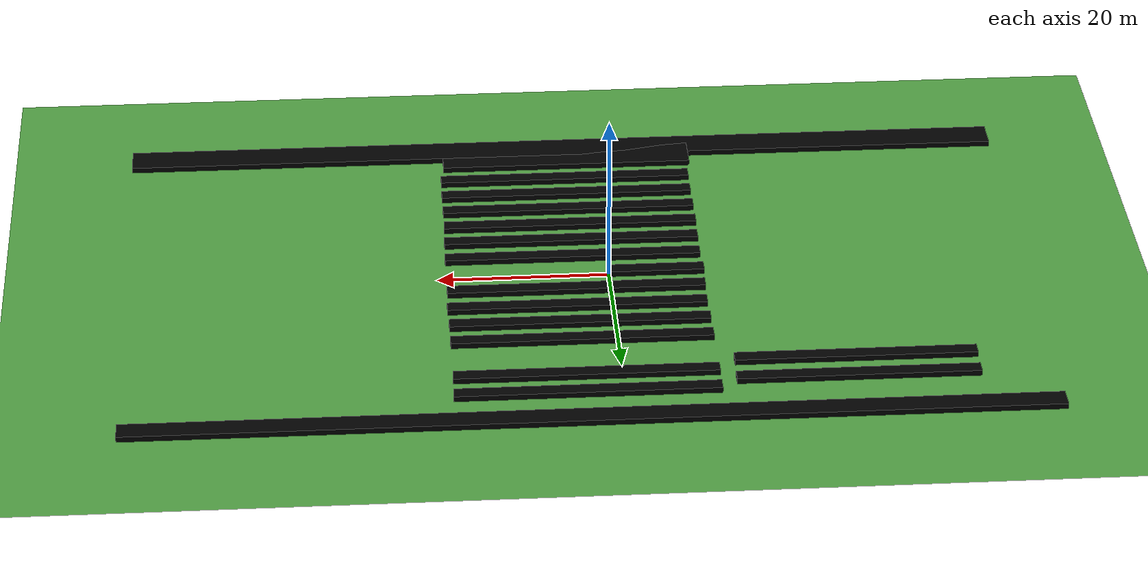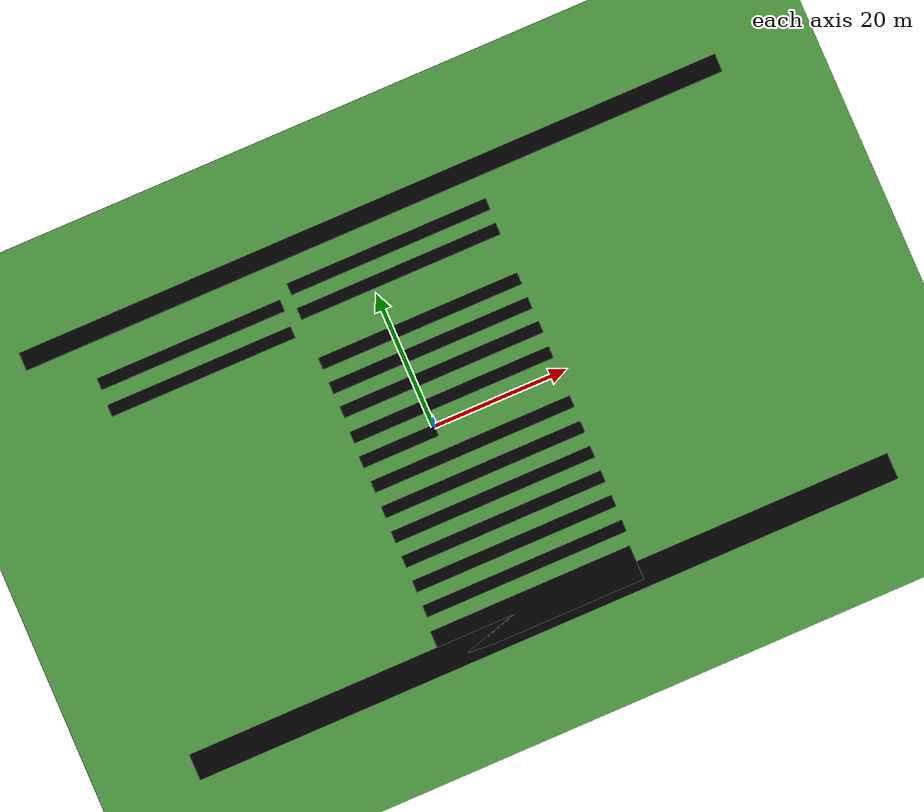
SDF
<sdf version="1.6">
 <world name="default">
  <model name="ground_plane">
   <static>1</static>
   <link name="link">
    <collision name="collision">
     <geometry><plane><normal>0 0 1</normal><size>120 120</size></plane></geometry>
     <surface><friction><ode><mu>100</mu><mu2>50</mu2></ode></friction></surface>
    </collision>
    <visual name="visual">
     <cast_shadows>0</cast_shadows>
     <geometry><plane><normal>0 0 1</normal><size>120 120</size></plane></geometry>
     <material>
      <script><uri>file://media/materials/scripts/gazebo.material</uri><name>Gazebo/Grass</name></script>
     </material>
    </visual>
   </link>
  </model>
  <model name="crop_01_8">
   <link name="crop_01_0::link_0">
    <inertial>
     <mass>10.9148</mass>
     <inertia><ixx>13.7036</ixx><ixy>0</ixy><ixz>0</ixz><iyy>702.087</iyy><iyz>0</iyz><izz>715.772</izz></inertia>
    </inertial>
    <visual name="visual">
     <geometry><box><size>30 1.68705 1</size></box></geometry>
     <material>
      <ambient>0 1 0 1</ambient>
      <diffuse>0 0 0 1</diffuse>
      <specular>0.1 0.1 0.1 1</specular>
      <emissive>0 0 0 0</emissive>
     </material>
    </visual>
    <collision name="collision">
     <geometry><box><size>30 1.68705 1</size></box></geometry>
     <surface>
      <friction>
       <ode><mu>1</mu><mu2>1</mu2><fdir1>0 0 0</fdir1><slip1>0</slip1><slip2>0</slip2></ode>
       <torsional>
        <coefficient>1</coefficient>
        <patch_radius>0</patch_radius>
        <surface_radius>0</surface_radius>
        <use_patch_radius>1</use_patch_radius>
        <ode><slip>0</slip></ode>
       </torsional>
      </friction>
      <bounce><restitution_coefficient>0</restitution_coefficient><threshold>1e+06</threshold></bounce>
      <contact>
       <collide_without_contact>0</collide_without_contact>
       <collide_without_contact_bitmask>1</collide_without_contact_bitmask>
       <collide_bitmask>1</collide_bitmask>
       <ode>
        <soft_cfm>0</soft_cfm>
        <soft_erp>0.2</soft_erp>
        <kp>1e+13</kp>
        <kd>1</kd>
        <max_vel>0.01</max_vel>
        <min_depth>0</min_depth>
       </ode>
       <bullet>
        <split_impulse>1</split_impulse>
        <split_impulse_penetration_threshold>-0.01</split_impulse_penetration_threshold>
        <soft_cfm>0</soft_cfm>
        <soft_erp>0.2</soft_erp>
        <kp>1e+13</kp>
        <kd>1</kd>
       </bullet>
      </contact>
     </surface>
    </collision>
   </link>
   <static>1</static>
   <pose>3.80294 -11.8661 0.050638 0 -0 0</pose>
  </model>
  <model name="crop_01_8_clone">
   <link name="crop_01_0::link_0">
    <inertial>
     <mass>10.9148</mass>
     <inertia><ixx>13.7036</ixx><ixy>0</ixy><ixz>0</ixz><iyy>702.087</iyy><iyz>0</iyz><izz>715.772</izz></inertia>
    </inertial>
    <visual name="visual">
     <geometry><box><size>30 1.68705 1</size></box></geometry>
     <material>
      <ambient>0 1 0 1</ambient>
      <diffuse>0 0 0 1</diffuse>
      <specular>0.1 0.1 0.1 1</specular>
      <emissive>0 0 0 0</emissive>
     </material>
    </visual>
    <collision name="collision">
     <geometry><box><size>30 1.68705 1</size></box></geometry>
     <surface>
      <friction>
       <ode><mu>1</mu><mu2>1</mu2><fdir1>0 0 0</fdir1><slip1>0</slip1><slip2>0</slip2></ode>
       <torsional>
        <coefficient>1</coefficient>
        <patch_radius>0</patch_radius>
        <surface_radius>0</surface_radius>
        <use_patch_radius>1</use_patch_radius>
        <ode><slip>0</slip></ode>
       </torsional>
      </friction>
      <bounce><restitution_coefficient>0</restitution_coefficient><threshold>1e+06</threshold></bounce>
      <contact>
       <collide_without_contact>0</collide_without_contact>
       <collide_without_contact_bitmask>1</collide_without_contact_bitmask>
       <collide_bitmask>1</collide_bitmask>
       <ode>
        <soft_cfm>0</soft_cfm>
        <soft_erp>0.2</soft_erp>
        <kp>1e+13</kp>
        <kd>1</kd>
        <max_vel>0.01</max_vel>
        <min_depth>0</min_depth>
       </ode>
       <bullet>
        <split_impulse>1</split_impulse>
        <split_impulse_penetration_threshold>-0.01</split_impulse_penetration_threshold>
        <soft_cfm>0</soft_cfm>
        <soft_erp>0.2</soft_erp>
        <kp>1e+13</kp>
        <kd>1</kd>
       </bullet>
      </contact>
     </surface>
    </collision>
   </link>
   <static>1</static>
   <pose>3.79308 -15.5752 0.050638 0 -0 0</pose>
  </model>
  <model name="crop_01_8_clone_0">
   <link name="crop_01_0::link_0">
    <inertial>
     <mass>10.9148</mass>
     <inertia><ixx>13.7036</ixx><ixy>0</ixy><ixz>0</ixz><iyy>702.087</iyy><iyz>0</iyz><izz>715.772</izz></inertia>
    </inertial>
    <visual name="visual">
     <geometry><box><size>30 1.68705 1</size></box></geometry>
     <material>
      <ambient>0 1 0 1</ambient>
      <diffuse>0 0 0 1</diffuse>
      <specular>0.1 0.1 0.1 1</specular>
      <emissive>0 0 0 0</emissive>
     </material>
    </visual>
    <collision name="collision">
     <geometry><box><size>30 1.68705 1</size></box></geometry>
     <surface>
      <friction>
       <ode><mu>1</mu><mu2>1</mu2><fdir1>0 0 0</fdir1><slip1>0</slip1><slip2>0</slip2></ode>
       <torsional>
        <coefficient>1</coefficient>
        <patch_radius>0</patch_radius>
        <surface_radius>0</surface_radius>
        <use_patch_radius>1</use_patch_radius>
        <ode><slip>0</slip></ode>
       </torsional>
      </friction>
      <bounce><restitution_coefficient>0</restitution_coefficient><threshold>1e+06</threshold></bounce>
      <contact>
       <collide_without_contact>0</collide_without_contact>
       <collide_without_contact_bitmask>1</collide_without_contact_bitmask>
       <collide_bitmask>1</collide_bitmask>
       <ode>
        <soft_cfm>0</soft_cfm>
        <soft_erp>0.2</soft_erp>
        <kp>1e+13</kp>
        <kd>1</kd>
        <max_vel>0.01</max_vel>
        <min_depth>0</min_depth>
       </ode>
       <bullet>
        <split_impulse>1</split_impulse>
        <split_impulse_penetration_threshold>-0.01</split_impulse_penetration_threshold>
        <soft_cfm>0</soft_cfm>
        <soft_erp>0.2</soft_erp>
        <kp>1e+13</kp>
        <kd>1</kd>
       </bullet>
      </contact>
     </surface>
    </collision>
   </link>
   <static>1</static>
   <pose>3.92731 -8.15154 0.050638 0 -0 0</pose>
  </model>
  <model name="crop_01_8_clone_0_clone_0_clone">
   <link name="crop_01_0::link_0">
    <inertial>
     <mass>10.9148</mass>
     <inertia><ixx>13.7036</ixx><ixy>0</ixy><ixz>0</ixz><iyy>702.087</iyy><iyz>0</iyz><izz>715.772</izz></inertia>
    </inertial>
    <visual name="visual">
     <geometry><box><size>11.274 1.68705 1</size></box></geometry>
     <material>
      <ambient>0 1 0 1</ambient>
      <diffuse>0 0 0 1</diffuse>
      <specular>0.1 0.1 0.1 1</specular>
      <emissive>0 0 0 0</emissive>
     </material>
    </visual>
    <collision name="collision">
     <geometry><box><size>11.274 1.68705 1</size></box></geometry>
     <surface>
      <friction>
       <ode><mu>1</mu><mu2>1</mu2><fdir1>0 0 0</fdir1><slip1>0</slip1><slip2>0</slip2></ode>
       <torsional>
        <coefficient>1</coefficient>
        <patch_radius>0</patch_radius>
        <surface_radius>0</surface_radius>
        <use_patch_radius>1</use_patch_radius>
        <ode><slip>0</slip></ode>
       </torsional>
      </friction>
      <bounce><restitution_coefficient>0</restitution_coefficient><threshold>1e+06</threshold></bounce>
      <contact>
       <collide_without_contact>0</collide_without_contact>
       <collide_without_contact_bitmask>1</collide_without_contact_bitmask>
       <collide_bitmask>1</collide_bitmask>
       <ode>
        <soft_cfm>0</soft_cfm>
        <soft_erp>0.2</soft_erp>
        <kp>1e+13</kp>
        <kd>1</kd>
        <max_vel>0.01</max_vel>
        <min_depth>0</min_depth>
       </ode>
       <bullet>
        <split_impulse>1</split_impulse>
        <split_impulse_penetration_threshold>-0.01</split_impulse_penetration_threshold>
        <soft_cfm>0</soft_cfm>
        <soft_erp>0.2</soft_erp>
        <kp>1e+13</kp>
        <kd>1</kd>
       </bullet>
      </contact>
     </surface>
    </collision>
   </link>
   <static>1</static>
   <pose>-5.5065 -0.57479 0.050638 0 -0 0</pose>
  </model>
  <model name="crop_01_8_clone_0_clone_0_clone_0">
   <link name="crop_01_0::link_0">
    <inertial>
     <mass>10.9148</mass>
     <inertia><ixx>13.7036</ixx><ixy>0</ixy><ixz>0</ixz><iyy>702.087</iyy><iyz>0</iyz><izz>715.772</izz></inertia>
    </inertial>
    <visual name="visual">
     <geometry><box><size>30 1.68705 1</size></box></geometry>
     <material>
      <ambient>0 1 0 1</ambient>
      <diffuse>0 0 0 1</diffuse>
      <specular>0.1 0.1 0.1 1</specular>
      <emissive>0 0 0 0</emissive>
     </material>
    </visual>
    <collision name="collision">
     <geometry><box><size>30 1.68705 1</size></box></geometry>
     <surface>
      <friction>
       <ode><mu>1</mu><mu2>1</mu2><fdir1>0 0 0</fdir1><slip1>0</slip1><slip2>0</slip2></ode>
       <torsional>
        <coefficient>1</coefficient>
        <patch_radius>0</patch_radius>
        <surface_radius>0</surface_radius>
        <use_patch_radius>1</use_patch_radius>
        <ode><slip>0</slip></ode>
       </torsional>
      </friction>
      <bounce><restitution_coefficient>0</restitution_coefficient><threshold>1e+06</threshold></bounce>
      <contact>
       <collide_without_contact>0</collide_without_contact>
       <collide_without_contact_bitmask>1</collide_without_contact_bitmask>
       <collide_bitmask>1</collide_bitmask>
       <ode>
        <soft_cfm>0</soft_cfm>
        <soft_erp>0.2</soft_erp>
        <kp>1e+13</kp>
        <kd>1</kd>
        <max_vel>0.01</max_vel>
        <min_depth>0</min_depth>
       </ode>
       <bullet>
        <split_impulse>1</split_impulse>
        <split_impulse_penetration_threshold>-0.01</split_impulse_penetration_threshold>
        <soft_cfm>0</soft_cfm>
        <soft_erp>0.2</soft_erp>
        <kp>1e+13</kp>
        <kd>1</kd>
       </bullet>
      </contact>
     </surface>
    </collision>
   </link>
   <static>1</static>
   <pose>4.01911 3.07059 0.050638 0 -0 0</pose>
  </model>
  <model name="crop_01_8_clone_0_clone_0_clone_1">
   <link name="crop_01_0::link_0">
    <inertial>
     <mass>10.9148</mass>
     <inertia><ixx>13.7036</ixx><ixy>0</ixy><ixz>0</ixz><iyy>702.087</iyy><iyz>0</iyz><izz>715.772</izz></inertia>
    </inertial>
    <visual name="visual">
     <geometry><box><size>30 1.68705 1</size></box></geometry>
     <material>
      <ambient>0 1 0 1</ambient>
      <diffuse>0 0 0 1</diffuse>
      <specular>0.1 0.1 0.1 1</specular>
      <emissive>0 0 0 0</emissive>
     </material>
    </visual>
    <collision name="collision">
     <geometry><box><size>30 1.68705 1</size></box></geometry>
     <surface>
      <friction>
       <ode><mu>1</mu><mu2>1</mu2><fdir1>0 0 0</fdir1><slip1>0</slip1><slip2>0</slip2></ode>
       <torsional>
        <coefficient>1</coefficient>
        <patch_radius>0</patch_radius>
        <surface_radius>0</surface_radius>
        <use_patch_radius>1</use_patch_radius>
        <ode><slip>0</slip></ode>
       </torsional>
      </friction>
      <bounce><restitution_coefficient>0</restitution_coefficient><threshold>1e+06</threshold></bounce>
      <contact>
       <collide_without_contact>0</collide_without_contact>
       <collide_without_contact_bitmask>1</collide_without_contact_bitmask>
       <collide_bitmask>1</collide_bitmask>
       <ode>
        <soft_cfm>0</soft_cfm>
        <soft_erp>0.2</soft_erp>
        <kp>1e+13</kp>
        <kd>1</kd>
        <max_vel>0.01</max_vel>
        <min_depth>0</min_depth>
       </ode>
       <bullet>
        <split_impulse>1</split_impulse>
        <split_impulse_penetration_threshold>-0.01</split_impulse_penetration_threshold>
        <soft_cfm>0</soft_cfm>
        <soft_erp>0.2</soft_erp>
        <kp>1e+13</kp>
        <kd>1</kd>
       </bullet>
      </contact>
     </surface>
    </collision>
   </link>
   <static>1</static>
   <pose>4.14547 6.85606 0.050638 0 -0 0</pose>
  </model>
  <model name="crop_01_8_clone_0_clone_0_clone_1_clone_clone">
   <link name="crop_01_0::link_0">
    <inertial>
     <mass>10.9148</mass>
     <inertia><ixx>13.7036</ixx><ixy>0</ixy><ixz>0</ixz><iyy>702.087</iyy><iyz>0</iyz><izz>715.772</izz></inertia>
    </inertial>
    <visual name="visual">
     <geometry><box><size>30 1.68705 1</size></box></geometry>
     <material>
      <ambient>0 1 0 1</ambient>
      <diffuse>0 0 0 1</diffuse>
      <specular>0.1 0.1 0.1 1</specular>
      <emissive>0 0 0 0</emissive>
     </material>
    </visual>
    <collision name="collision">
     <geometry><box><size>30 1.68705 1</size></box></geometry>
     <surface>
      <friction>
       <ode><mu>1</mu><mu2>1</mu2><fdir1>0 0 0</fdir1><slip1>0</slip1><slip2>0</slip2></ode>
       <torsional>
        <coefficient>1</coefficient>
        <patch_radius>0</patch_radius>
        <surface_radius>0</surface_radius>
        <use_patch_radius>1</use_patch_radius>
        <ode><slip>0</slip></ode>
       </torsional>
      </friction>
      <bounce><restitution_coefficient>0</restitution_coefficient><threshold>1e+06</threshold></bounce>
      <contact>
       <collide_without_contact>0</collide_without_contact>
       <collide_without_contact_bitmask>1</collide_without_contact_bitmask>
       <collide_bitmask>1</collide_bitmask>
       <ode>
        <soft_cfm>0</soft_cfm>
        <soft_erp>0.2</soft_erp>
        <kp>1e+13</kp>
        <kd>1</kd>
        <max_vel>0.01</max_vel>
        <min_depth>0</min_depth>
       </ode>
       <bullet>
        <split_impulse>1</split_impulse>
        <split_impulse_penetration_threshold>-0.01</split_impulse_penetration_threshold>
        <soft_cfm>0</soft_cfm>
        <soft_erp>0.2</soft_erp>
        <kp>1e+13</kp>
        <kd>1</kd>
       </bullet>
      </contact>
     </surface>
    </collision>
   </link>
   <static>1</static>
   <pose>4.07189 10.5095 0.050638 0 -0 0</pose>
  </model>
  <model name="crop_01_8_clone_0_clone_0_clone_1_clone_clone_clone">
   <link name="crop_01_0::link_0">
    <inertial>
     <mass>10.9148</mass>
     <inertia><ixx>13.7036</ixx><ixy>0</ixy><ixz>0</ixz><iyy>702.087</iyy><iyz>0</iyz><izz>715.772</izz></inertia>
    </inertial>
    <visual name="visual">
     <geometry><box><size>30 1.68705 1</size></box></geometry>
     <material>
      <ambient>0 1 0 1</ambient>
      <diffuse>0 0 0 1</diffuse>
      <specular>0.1 0.1 0.1 1</specular>
      <emissive>0 0 0 0</emissive>
     </material>
    </visual>
    <collision name="collision">
     <geometry><box><size>30 1.68705 1</size></box></geometry>
     <surface>
      <friction>
       <ode><mu>1</mu><mu2>1</mu2><fdir1>0 0 0</fdir1><slip1>0</slip1><slip2>0</slip2></ode>
       <torsional>
        <coefficient>1</coefficient>
        <patch_radius>0</patch_radius>
        <surface_radius>0</surface_radius>
        <use_patch_radius>1</use_patch_radius>
        <ode><slip>0</slip></ode>
       </torsional>
      </friction>
      <bounce><restitution_coefficient>0</restitution_coefficient><threshold>1e+06</threshold></bounce>
      <contact>
       <collide_without_contact>0</collide_without_contact>
       <collide_without_contact_bitmask>1</collide_without_contact_bitmask>
       <collide_bitmask>1</collide_bitmask>
       <ode>
        <soft_cfm>0</soft_cfm>
        <soft_erp>0.2</soft_erp>
        <kp>1e+13</kp>
        <kd>1</kd>
        <max_vel>0.01</max_vel>
        <min_depth>0</min_depth>
       </ode>
       <bullet>
        <split_impulse>1</split_impulse>
        <split_impulse_penetration_threshold>-0.01</split_impulse_penetration_threshold>
        <soft_cfm>0</soft_cfm>
        <soft_erp>0.2</soft_erp>
        <kp>1e+13</kp>
        <kd>1</kd>
       </bullet>
      </contact>
     </surface>
    </collision>
   </link>
   <static>1</static>
   <pose>4.07232 14.2098 0.050638 0 -0 0</pose>
  </model>
  <model name="crop_01_8_clone_0_clone_0_clone_1_clone_clone_clone_clone_0">
   <link name="crop_01_0::link_0">
    <inertial>
     <mass>10.9148</mass>
     <inertia><ixx>13.7036</ixx><ixy>0</ixy><ixz>0</ixz><iyy>702.087</iyy><iyz>0</iyz><izz>715.772</izz></inertia>
    </inertial>
    <visual name="visual">
     <geometry><box><size>30 1.68705 1</size></box></geometry>
     <material>
      <ambient>0 1 0 1</ambient>
      <diffuse>0 0 0 1</diffuse>
      <specular>0.1 0.1 0.1 1</specular>
      <emissive>0 0 0 0</emissive>
     </material>
    </visual>
    <collision name="collision">
     <geometry><box><size>30 1.68705 1</size></box></geometry>
     <surface>
      <friction>
       <ode><mu>1</mu><mu2>1</mu2><fdir1>0 0 0</fdir1><slip1>0</slip1><slip2>0</slip2></ode>
       <torsional>
        <coefficient>1</coefficient>
        <patch_radius>0</patch_radius>
        <surface_radius>0</surface_radius>
        <use_patch_radius>1</use_patch_radius>
        <ode><slip>0</slip></ode>
       </torsional>
      </friction>
      <bounce><restitution_coefficient>0</restitution_coefficient><threshold>1e+06</threshold></bounce>
      <contact>
       <collide_without_contact>0</collide_without_contact>
       <collide_without_contact_bitmask>1</collide_without_contact_bitmask>
       <collide_bitmask>1</collide_bitmask>
       <ode>
        <soft_cfm>0</soft_cfm>
        <soft_erp>0.2</soft_erp>
        <kp>1e+13</kp>
        <kd>1</kd>
        <max_vel>0.01</max_vel>
        <min_depth>0</min_depth>
       </ode>
       <bullet>
        <split_impulse>1</split_impulse>
        <split_impulse_penetration_threshold>-0.01</split_impulse_penetration_threshold>
        <soft_cfm>0</soft_cfm>
        <soft_erp>0.2</soft_erp>
        <kp>1e+13</kp>
        <kd>1</kd>
       </bullet>
      </contact>
     </surface>
    </collision>
   </link>
   <static>1</static>
   <pose>4.08383 21.7323 0.050638 0 -0 0</pose>
  </model>
  <model name="crop_01_8_clone_0_clone_0_clone_1_clone_clone_clone_clone_0_clone">
   <link name="crop_01_0::link_0">
    <inertial>
     <mass>10.9148</mass>
     <inertia><ixx>13.7036</ixx><ixy>0</ixy><ixz>0</ixz><iyy>702.087</iyy><iyz>0</iyz><izz>715.772</izz></inertia>
    </inertial>
    <visual name="visual">
     <geometry><box><size>30 1.68705 1</size></box></geometry>
     <material>
      <ambient>0 1 0 1</ambient>
      <diffuse>0 0 0 1</diffuse>
      <specular>0.1 0.1 0.1 1</specular>
      <emissive>0 0 0 0</emissive>
     </material>
    </visual>
    <collision name="collision">
     <geometry><box><size>30 1.68705 1</size></box></geometry>
     <surface>
      <friction>
       <ode><mu>1</mu><mu2>1</mu2><fdir1>0 0 0</fdir1><slip1>0</slip1><slip2>0</slip2></ode>
       <torsional>
        <coefficient>1</coefficient>
        <patch_radius>0</patch_radius>
        <surface_radius>0</surface_radius>
        <use_patch_radius>1</use_patch_radius>
        <ode><slip>0</slip></ode>
       </torsional>
      </friction>
      <bounce><restitution_coefficient>0</restitution_coefficient><threshold>1e+06</threshold></bounce>
      <contact>
       <collide_without_contact>0</collide_without_contact>
       <collide_without_contact_bitmask>1</collide_without_contact_bitmask>
       <collide_bitmask>1</collide_bitmask>
       <ode>
        <soft_cfm>0</soft_cfm>
        <soft_erp>0.2</soft_erp>
        <kp>1e+13</kp>
        <kd>1</kd>
        <max_vel>0.01</max_vel>
        <min_depth>0</min_depth>
       </ode>
       <bullet>
        <split_impulse>1</split_impulse>
        <split_impulse_penetration_threshold>-0.01</split_impulse_penetration_threshold>
        <soft_cfm>0</soft_cfm>
        <soft_erp>0.2</soft_erp>
        <kp>1e+13</kp>
        <kd>1</kd>
       </bullet>
      </contact>
     </surface>
    </collision>
   </link>
   <static>1</static>
   <pose>4.15605 25.4436 0.050638 0 -0 0</pose>
  </model>
  <model name="crop_01_8_clone_0_clone_0_clone_1_clone_clone_clone_clone_0_clone_0">
   <link name="crop_01_0::link_0">
    <inertial>
     <mass>10.9148</mass>
     <inertia><ixx>13.7036</ixx><ixy>0</ixy><ixz>0</ixz><iyy>702.087</iyy><iyz>0</iyz><izz>715.772</izz></inertia>
    </inertial>
    <visual name="visual">
     <geometry><box><size>105.069 2.60686 1</size></box></geometry>
     <material>
      <ambient>0 1 0 1</ambient>
      <diffuse>0 0 0 1</diffuse>
      <specular>0.1 0.1 0.1 1</specular>
      <emissive>0 0 0 0</emissive>
     </material>
    </visual>
    <collision name="collision">
     <geometry><box><size>105.069 2.60686 1</size></box></geometry>
     <surface>
      <friction>
       <ode><mu>1</mu><mu2>1</mu2><fdir1>0 0 0</fdir1><slip1>0</slip1><slip2>0</slip2></ode>
       <torsional>
        <coefficient>1</coefficient>
        <patch_radius>0</patch_radius>
        <surface_radius>0</surface_radius>
        <use_patch_radius>1</use_patch_radius>
        <ode><slip>0</slip></ode>
       </torsional>
      </friction>
      <bounce><restitution_coefficient>0</restitution_coefficient><threshold>1e+06</threshold></bounce>
      <contact>
       <collide_without_contact>0</collide_without_contact>
       <collide_without_contact_bitmask>1</collide_without_contact_bitmask>
       <collide_bitmask>1</collide_bitmask>
       <ode>
        <soft_cfm>0</soft_cfm>
        <soft_erp>0.2</soft_erp>
        <kp>1e+13</kp>
        <kd>1</kd>
        <max_vel>0.01</max_vel>
        <min_depth>0</min_depth>
       </ode>
       <bullet>
        <split_impulse>1</split_impulse>
        <split_impulse_penetration_threshold>-0.01</split_impulse_penetration_threshold>
        <soft_cfm>0</soft_cfm>
        <soft_erp>0.2</soft_erp>
        <kp>1e+13</kp>
        <kd>1</kd>
       </bullet>
      </contact>
     </surface>
    </collision>
   </link>
   <static>1</static>
   <pose>3.83873 30.826 0.050638 0 -0 0</pose>
  </model>
  <model name="crop_01_8_clone_0_clone_0_clone_1_clone_clone_clone_clone_0_clone_1">
   <link name="crop_01_0::link_0">
    <inertial>
     <mass>10.9148</mass>
     <inertia><ixx>13.7036</ixx><ixy>0</ixy><ixz>0</ixz><iyy>702.087</iyy><iyz>0</iyz><izz>715.772</izz></inertia>
    </inertial>
    <visual name="visual">
     <geometry><box><size>30 1.68705 1</size></box></geometry>
     <material>
      <ambient>0 1 0 1</ambient>
      <diffuse>0 0 0 1</diffuse>
      <specular>0.1 0.1 0.1 1</specular>
      <emissive>0 0 0 0</emissive>
     </material>
    </visual>
    <collision name="collision">
     <geometry><box><size>30 1.68705 1</size></box></geometry>
     <surface>
      <friction>
       <ode><mu>1</mu><mu2>1</mu2><fdir1>0 0 0</fdir1><slip1>0</slip1><slip2>0</slip2></ode>
       <torsional>
        <coefficient>1</coefficient>
        <patch_radius>0</patch_radius>
        <surface_radius>0</surface_radius>
        <use_patch_radius>1</use_patch_radius>
        <ode><slip>0</slip></ode>
       </torsional>
      </friction>
      <bounce><restitution_coefficient>0</restitution_coefficient><threshold>1e+06</threshold></bounce>
      <contact>
       <collide_without_contact>0</collide_without_contact>
       <collide_without_contact_bitmask>1</collide_without_contact_bitmask>
       <collide_bitmask>1</collide_bitmask>
       <ode>
        <soft_cfm>0</soft_cfm>
        <soft_erp>0.2</soft_erp>
        <kp>1e+13</kp>
        <kd>1</kd>
        <max_vel>0.01</max_vel>
        <min_depth>0</min_depth>
       </ode>
       <bullet>
        <split_impulse>1</split_impulse>
        <split_impulse_penetration_threshold>-0.01</split_impulse_penetration_threshold>
        <soft_cfm>0</soft_cfm>
        <soft_erp>0.2</soft_erp>
        <kp>1e+13</kp>
        <kd>1</kd>
       </bullet>
      </contact>
     </surface>
    </collision>
   </link>
   <static>1</static>
   <pose>3.80036 -19.2787 0.050638 0 -0 0</pose>
  </model>
  <model name="crop_01_8_clone_0_clone_0_clone_1_clone_clone_clone_clone_0_clone_3">
   <link name="crop_01_0::link_0">
    <inertial>
     <mass>10.9148</mass>
     <inertia><ixx>13.7036</ixx><ixy>0</ixy><ixz>0</ixz><iyy>702.087</iyy><iyz>0</iyz><izz>715.772</izz></inertia>
    </inertial>
    <visual name="visual">
     <geometry><box><size>30 1.68705 1</size></box></geometry>
     <material>
      <ambient>0 1 0 1</ambient>
      <diffuse>0 0 0 1</diffuse>
      <specular>0.1 0.1 0.1 1</specular>
      <emissive>0 0 0 0</emissive>
     </material>
    </visual>
    <collision name="collision">
     <geometry><box><size>30 1.68705 1</size></box></geometry>
     <surface>
      <friction>
       <ode><mu>1</mu><mu2>1</mu2><fdir1>0 0 0</fdir1><slip1>0</slip1><slip2>0</slip2></ode>
       <torsional>
        <coefficient>1</coefficient>
        <patch_radius>0</patch_radius>
        <surface_radius>0</surface_radius>
        <use_patch_radius>1</use_patch_radius>
        <ode><slip>0</slip></ode>
       </torsional>
      </friction>
      <bounce><restitution_coefficient>0</restitution_coefficient><threshold>1e+06</threshold></bounce>
      <contact>
       <collide_without_contact>0</collide_without_contact>
       <collide_without_contact_bitmask>1</collide_without_contact_bitmask>
       <collide_bitmask>1</collide_bitmask>
       <ode>
        <soft_cfm>0</soft_cfm>
        <soft_erp>0.2</soft_erp>
        <kp>1e+13</kp>
        <kd>1</kd>
        <max_vel>0.01</max_vel>
        <min_depth>0</min_depth>
       </ode>
       <bullet>
        <split_impulse>1</split_impulse>
        <split_impulse_penetration_threshold>-0.01</split_impulse_penetration_threshold>
        <soft_cfm>0</soft_cfm>
        <soft_erp>0.2</soft_erp>
        <kp>1e+13</kp>
        <kd>1</kd>
       </bullet>
      </contact>
     </surface>
    </collision>
   </link>
   <static>1</static>
   <pose>3.74697 -23.0068 0.050638 0 -0 0</pose>
  </model>
  <model name="crop_01_8_clone_0_clone">
   <link name="crop_01_0::link_0">
    <inertial>
     <mass>10.9148</mass>
     <inertia><ixx>13.7036</ixx><ixy>0</ixy><ixz>0</ixz><iyy>702.087</iyy><iyz>0</iyz><izz>715.772</izz></inertia>
    </inertial>
    <visual name="visual">
     <geometry><box><size>30 1.68705 1</size></box></geometry>
     <material>
      <ambient>0 1 0 1</ambient>
      <diffuse>0 0 0 1</diffuse>
      <specular>0.1 0.1 0.1 1</specular>
      <emissive>0 0 0 0</emissive>
     </material>
    </visual>
    <collision name="collision">
     <geometry><box><size>30 1.68705 1</size></box></geometry>
     <surface>
      <friction>
       <ode><mu>1</mu><mu2>1</mu2><fdir1>0 0 0</fdir1><slip1>0</slip1><slip2>0</slip2></ode>
       <torsional>
        <coefficient>1</coefficient>
        <patch_radius>0</patch_radius>
        <surface_radius>0</surface_radius>
        <use_patch_radius>1</use_patch_radius>
        <ode><slip>0</slip></ode>
       </torsional>
      </friction>
      <bounce><restitution_coefficient>0</restitution_coefficient><threshold>1e+06</threshold></bounce>
      <contact>
       <collide_without_contact>0</collide_without_contact>
       <collide_without_contact_bitmask>1</collide_without_contact_bitmask>
       <collide_bitmask>1</collide_bitmask>
       <ode>
        <soft_cfm>0</soft_cfm>
        <soft_erp>0.2</soft_erp>
        <kp>1e+13</kp>
        <kd>1</kd>
        <max_vel>0.01</max_vel>
        <min_depth>0</min_depth>
       </ode>
       <bullet>
        <split_impulse>1</split_impulse>
        <split_impulse_penetration_threshold>-0.01</split_impulse_penetration_threshold>
        <soft_cfm>0</soft_cfm>
        <soft_erp>0.2</soft_erp>
        <kp>1e+13</kp>
        <kd>1</kd>
       </bullet>
      </contact>
     </surface>
    </collision>
   </link>
   <static>1</static>
   <pose>3.99494 -4.3494 0.050638 0 -0 0</pose>
  </model>
  <model name="crop_01_8_clone_0_clone_0_clone_1_clone_clone_clone_clone_0_clone_0_clone">
   <link name="crop_01_0::link_0">
    <inertial>
     <mass>10.9148</mass>
     <inertia><ixx>13.7036</ixx><ixy>0</ixy><ixz>0</ixz><iyy>702.087</iyy><iyz>0</iyz><izz>715.772</izz></inertia>
    </inertial>
    <visual name="visual">
     <geometry><box><size>105.069 3.81328 1</size></box></geometry>
     <material>
      <ambient>0 1 0 1</ambient>
      <diffuse>0 0 0 1</diffuse>
      <specular>0.1 0.1 0.1 1</specular>
      <emissive>0 0 0 0</emissive>
     </material>
    </visual>
    <collision name="collision">
     <geometry><box><size>105.069 3.81328 1</size></box></geometry>
     <surface>
      <friction>
       <ode><mu>1</mu><mu2>1</mu2><fdir1>0 0 0</fdir1><slip1>0</slip1><slip2>0</slip2></ode>
       <torsional>
        <coefficient>1</coefficient>
        <patch_radius>0</patch_radius>
        <surface_radius>0</surface_radius>
        <use_patch_radius>1</use_patch_radius>
        <ode><slip>0</slip></ode>
       </torsional>
      </friction>
      <bounce><restitution_coefficient>0</restitution_coefficient><threshold>1e+06</threshold></bounce>
      <contact>
       <collide_without_contact>0</collide_without_contact>
       <collide_without_contact_bitmask>1</collide_without_contact_bitmask>
       <collide_bitmask>1</collide_bitmask>
       <ode>
        <soft_cfm>0</soft_cfm>
        <soft_erp>0.2</soft_erp>
        <kp>1e+13</kp>
        <kd>1</kd>
        <max_vel>0.01</max_vel>
        <min_depth>0</min_depth>
       </ode>
       <bullet>
        <split_impulse>1</split_impulse>
        <split_impulse_penetration_threshold>-0.01</split_impulse_penetration_threshold>
        <soft_cfm>0</soft_cfm>
        <soft_erp>0.2</soft_erp>
        <kp>1e+13</kp>
        <kd>1</kd>
       </bullet>
      </contact>
     </surface>
    </collision>
   </link>
   <static>1</static>
   <pose>3.61019 -30.1542 0.050638 0 -0 0</pose>
  </model>
  <model name="crop_01_8_clone_0_clone_0_clone_1_clone_clone_clone_clone_0_clone_3_clone">
   <link name="crop_01_0::link_0">
    <inertial>
     <mass>10.9148</mass>
     <inertia><ixx>13.7036</ixx><ixy>0</ixy><ixz>0</ixz><iyy>702.087</iyy><iyz>0</iyz><izz>715.772</izz></inertia>
    </inertial>
    <visual name="visual">
     <geometry><box><size>30 5.05418 1</size></box></geometry>
     <material>
      <ambient>0 1 0 1</ambient>
      <diffuse>0 0 0 1</diffuse>
      <specular>0.1 0.1 0.1 1</specular>
      <emissive>0 0 0 0</emissive>
     </material>
    </visual>
    <collision name="collision">
     <geometry><box><size>30 5.05418 1</size></box></geometry>
     <surface>
      <friction>
       <ode><mu>1</mu><mu2>1</mu2><fdir1>0 0 0</fdir1><slip1>0</slip1><slip2>0</slip2></ode>
       <torsional>
        <coefficient>1</coefficient>
        <patch_radius>0</patch_radius>
        <surface_radius>0</surface_radius>
        <use_patch_radius>1</use_patch_radius>
        <ode><slip>0</slip></ode>
       </torsional>
      </friction>
      <bounce><restitution_coefficient>0</restitution_coefficient><threshold>1e+06</threshold></bounce>
      <contact>
       <collide_without_contact>0</collide_without_contact>
       <collide_without_contact_bitmask>1</collide_without_contact_bitmask>
       <collide_bitmask>1</collide_bitmask>
       <ode>
        <soft_cfm>0</soft_cfm>
        <soft_erp>0.2</soft_erp>
        <kp>1e+13</kp>
        <kd>1</kd>
        <max_vel>0.01</max_vel>
        <min_depth>0</min_depth>
       </ode>
       <bullet>
        <split_impulse>1</split_impulse>
        <split_impulse_penetration_threshold>-0.01</split_impulse_penetration_threshold>
        <soft_cfm>0</soft_cfm>
        <soft_erp>0.2</soft_erp>
        <kp>1e+13</kp>
        <kd>1</kd>
       </bullet>
      </contact>
     </surface>
    </collision>
   </link>
   <static>1</static>
   <pose>3.33941 -28.386 0.050638 0 -0 0</pose>
  </model>
  <model name="crop_01_8_clone_0_clone_0_clone_1_clone_clone_clone_clone_0_clone_19_clone_1">
   <link name="crop_01_0::link_0">
    <inertial>
     <mass>10.9148</mass>
     <inertia><ixx>13.7036</ixx><ixy>0</ixy><ixz>0</ixz><iyy>702.087</iyy><iyz>0</iyz><izz>715.772</izz></inertia>
    </inertial>
    <visual name="visual">
     <geometry><box><size>27.5929 1.68705 1</size></box></geometry>
     <material>
      <ambient>0 1 0 1</ambient>
      <diffuse>0 0 0 1</diffuse>
      <specular>0.1 0.1 0.1 1</specular>
      <emissive>0 0 0 0</emissive>
     </material>
    </visual>
    <collision name="collision">
     <geometry><box><size>27.5929 1.68705 1</size></box></geometry>
     <surface>
      <friction>
       <ode><mu>1</mu><mu2>1</mu2><fdir1>0 0 0</fdir1><slip1>0</slip1><slip2>0</slip2></ode>
       <torsional>
        <coefficient>1</coefficient>
        <patch_radius>0</patch_radius>
        <surface_radius>0</surface_radius>
        <use_patch_radius>1</use_patch_radius>
        <ode><slip>0</slip></ode>
       </torsional>
      </friction>
      <bounce><restitution_coefficient>0</restitution_coefficient><threshold>1e+06</threshold></bounce>
      <contact>
       <collide_without_contact>0</collide_without_contact>
       <collide_without_contact_bitmask>1</collide_without_contact_bitmask>
       <collide_bitmask>1</collide_bitmask>
       <ode>
        <soft_cfm>0</soft_cfm>
        <soft_erp>0.2</soft_erp>
        <kp>1e+13</kp>
        <kd>1</kd>
        <max_vel>0.01</max_vel>
        <min_depth>0</min_depth>
       </ode>
       <bullet>
        <split_impulse>1</split_impulse>
        <split_impulse_penetration_threshold>-0.01</split_impulse_penetration_threshold>
        <soft_cfm>0</soft_cfm>
        <soft_erp>0.2</soft_erp>
        <kp>1e+13</kp>
        <kd>1</kd>
       </bullet>
      </contact>
     </surface>
    </collision>
   </link>
   <static>1</static>
   <pose>-26.5212 19.7887 0.050638 0 -0 0</pose>
  </model>
  <model name="crop_01_8_clone_0_clone_0_clone_1_clone_clone_clone_clone_0_clone_19_clone_5_clone">
   <link name="crop_01_0::link_0">
    <inertial>
     <mass>10.9148</mass>
     <inertia><ixx>13.7036</ixx><ixy>0</ixy><ixz>0</ixz><iyy>702.087</iyy><iyz>0</iyz><izz>715.772</izz></inertia>
    </inertial>
    <visual name="visual">
     <geometry><box><size>27.5929 1.68705 1</size></box></geometry>
     <material>
      <ambient>0 1 0 1</ambient>
      <diffuse>0 0 0 1</diffuse>
      <specular>0.1 0.1 0.1 1</specular>
      <emissive>0 0 0 0</emissive>
     </material>
    </visual>
    <collision name="collision">
     <geometry><box><size>27.5929 1.68705 1</size></box></geometry>
     <surface>
      <friction>
       <ode><mu>1</mu><mu2>1</mu2><fdir1>0 0 0</fdir1><slip1>0</slip1><slip2>0</slip2></ode>
       <torsional>
        <coefficient>1</coefficient>
        <patch_radius>0</patch_radius>
        <surface_radius>0</surface_radius>
        <use_patch_radius>1</use_patch_radius>
        <ode><slip>0</slip></ode>
       </torsional>
      </friction>
      <bounce><restitution_coefficient>0</restitution_coefficient><threshold>1e+06</threshold></bounce>
      <contact>
       <collide_without_contact>0</collide_without_contact>
       <collide_without_contact_bitmask>1</collide_without_contact_bitmask>
       <collide_bitmask>1</collide_bitmask>
       <ode>
        <soft_cfm>0</soft_cfm>
        <soft_erp>0.2</soft_erp>
        <kp>1e+13</kp>
        <kd>1</kd>
        <max_vel>0.01</max_vel>
        <min_depth>0</min_depth>
       </ode>
       <bullet>
        <split_impulse>1</split_impulse>
        <split_impulse_penetration_threshold>-0.01</split_impulse_penetration_threshold>
        <soft_cfm>0</soft_cfm>
        <soft_erp>0.2</soft_erp>
        <kp>1e+13</kp>
        <kd>1</kd>
       </bullet>
      </contact>
     </surface>
    </collision>
   </link>
   <static>1</static>
   <pose>-26.3931 23.7635 0.050638 0 -0 0</pose>
  </model>
 </world>
</sdf>
